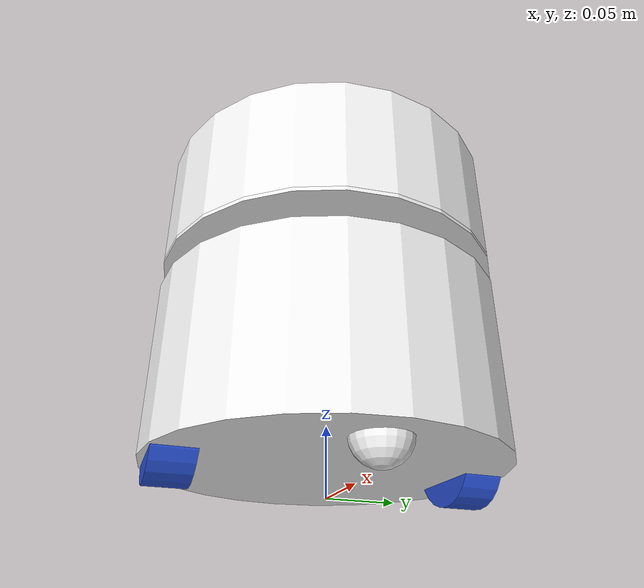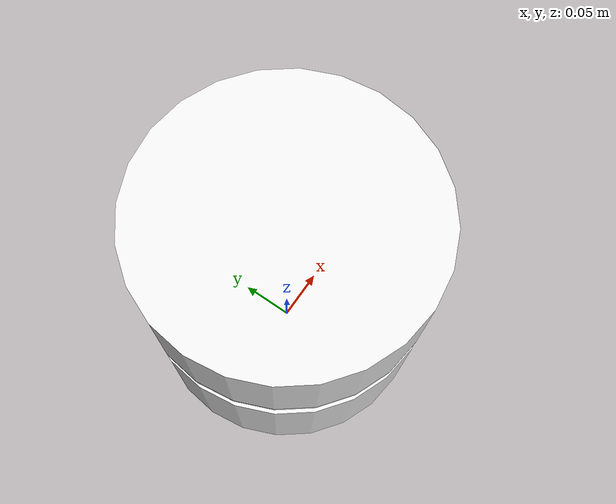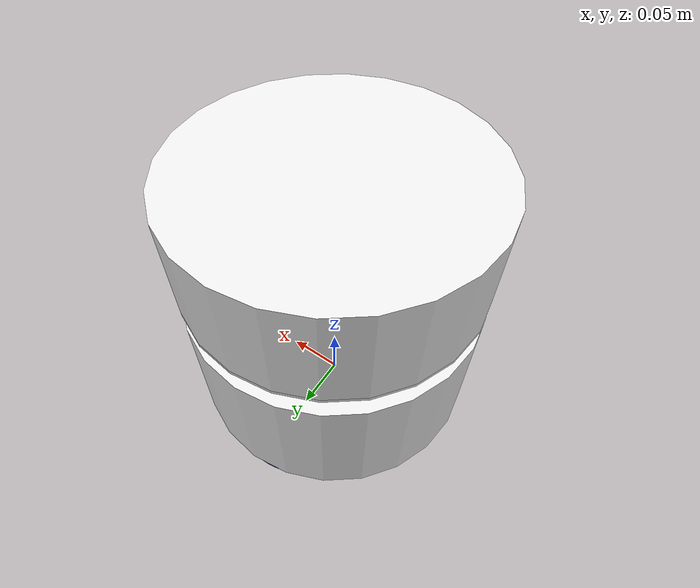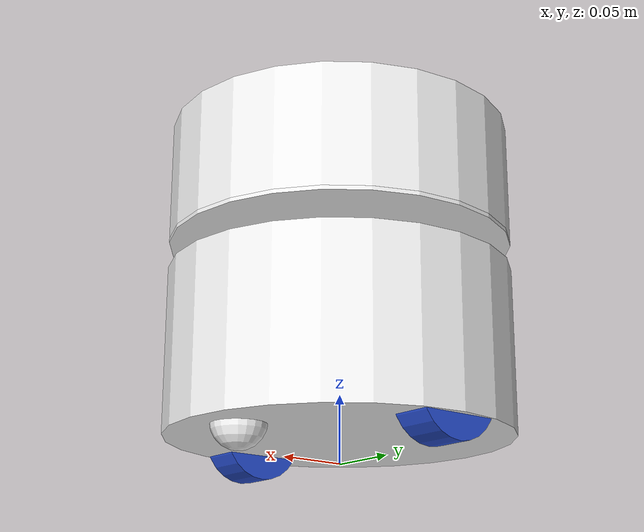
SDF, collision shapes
<sdf version='1.7'>
  <model name='makerspet_fido'>
    <link name='base_footprint'>
      <inertial>
        <pose>0.016697 0 0.092856 0 -0 0</pose>
        <mass>1.32</mass>
        <inertia>
          <ixx>0.0106776</ixx>
          <ixy>-1.23224e-19</ixy>
          <ixz>2.64265e-06</ixz>
          <iyy>0.013295</iyy>
          <iyz>-5.61402e-19</iyz>
          <izz>0.00547599</izz>
        </inertia>
      </inertial>
      <collision name='base_footprint_fixed_joint_lump__base_link_collision'>
        <pose>0 0 0.07935 0 -0 0</pose>
        <geometry>
          <cylinder>
            <length>0.1227</length>
            <radius>0.1271</radius>
          </cylinder>
        </geometry>
        <surface>
          <contact>
            <ode/>
          </contact>
          <friction>
            <ode/>
          </friction>
        </surface>
      </collision>
      <collision name='base_footprint_fixed_joint_lump__base_upper_link_collision_1'>
        <pose>0 0 0.1617 0 -0 0</pose>
        <geometry>
          <cylinder>
            <length>0.003</length>
            <radius>0.1271</radius>
          </cylinder>
        </geometry>
        <surface>
          <contact>
            <ode/>
          </contact>
          <friction>
            <ode/>
          </friction>
        </surface>
      </collision>
      <collision name='base_footprint_fixed_joint_lump__head_link_collision_2'>
        <pose>0 0 0.2082 0 -0 0</pose>
        <geometry>
          <cylinder>
            <length>0.09</length>
            <radius>0.1271</radius>
          </cylinder>
        </geometry>
        <surface>
          <contact>
            <ode/>
          </contact>
          <friction>
            <ode/>
          </friction>
        </surface>
      </collision>
      <collision name='base_footprint_fixed_joint_lump__tablet_link_collision_3'>
        <pose>0.043744 0 0.199895 1.22173 -0 1.5708</pose>
        <geometry>
          <box>
            <size>0.1669 0.0781 0.009</size>
          </box>
        </geometry>
      </collision>
      <collision name='base_footprint_fixed_joint_lump__caster_link_collision_4'>
        <pose>0.0885 0 0.02 0 -0 0</pose>
        <geometry>
          <sphere>
            <radius>0.02</radius>
          </sphere>
        </geometry>
        <surface>
          <contact>
            <ode/>
          </contact>
          <friction>
            <ode>
              <mu>0.2</mu>
              <mu2>0.2</mu2>
            </ode>
          </friction>
        </surface>
      </collision>
      <collision name='base_footprint_fixed_joint_lump__base_scan_collision_5'>
        <pose>0 0 0.14935 -3.14159 0 0</pose>
        <geometry>
          <cylinder>
            <length>0.0173</length>
            <radius>0.0328</radius>
          </cylinder>
        </geometry>
        <surface>
          <contact>
            <ode/>
          </contact>
          <friction>
            <ode/>
          </friction>
        </surface>
      </collision>
      <visual name='base_footprint_fixed_joint_lump__base_link_visual'>
        <pose>0 0 0.07935 0 -0 0</pose>
        <geometry>
          <cylinder>
            <length>0.1227</length>
            <radius>0.1271</radius>
          </cylinder>
        </geometry>
        <material>
          <script>
            <name>Gazebo/White</name>
            <uri>file://media/materials/scripts/gazebo.material</uri>
          </script>
        </material>
      </visual>
      <visual name='base_footprint_fixed_joint_lump__base_upper_link_visual_1'>
        <pose>0 0 0.1617 0 -0 0</pose>
        <geometry>
          <cylinder>
            <length>0.003</length>
            <radius>0.1271</radius>
          </cylinder>
        </geometry>
        <material>
          <script>
            <name>Gazebo/White</name>
            <uri>file://media/materials/scripts/gazebo.material</uri>
          </script>
        </material>
      </visual>
      <visual name='base_footprint_fixed_joint_lump__head_link_visual_2'>
        <pose>0 0 0.1632 0 -0 0</pose>
        <geometry>
          <mesh>
            <scale>0.000254 0.000254 0.00018</scale>
            <uri>model://makerspet_fido/mesh/head.stl</uri>
          </mesh>
        </geometry>
        <material>
          <script>
            <name>Gazebo/Red</name>
            <uri>file://media/materials/scripts/gazebo.material</uri>
          </script>
        </material>
      </visual>
      <visual name='base_footprint_fixed_joint_lump__tablet_link_visual_3'>
        <pose>0.043744 0 0.199895 1.22173 -0 1.5708</pose>
        <geometry>
          <box>
            <size>0.1669 0.0781 0.009</size>
          </box>
        </geometry>
      </visual>
      <visual name='base_footprint_fixed_joint_lump__color_camera_link_visual_4'>
        <pose>0.047879 -0.07545 0.2014 0 1.22173 0</pose>
        <geometry>
          <cylinder>
            <length>0.0001</length>
            <radius>0.002</radius>
          </cylinder>
        </geometry>
      </visual>
      <visual name='base_footprint_fixed_joint_lump__imu_link_visual_5'>
        <pose>0.043744 0 0.199895 0 -0.349066 0</pose>
        <geometry>
          <box>
            <size>0.001 0.002 0.004</size>
          </box>
        </geometry>
      </visual>
      <visual name='base_footprint_fixed_joint_lump__caster_link_visual_6'>
        <pose>0.0885 0 0.02 0 -0 0</pose>
        <geometry>
          <sphere>
            <radius>0.02</radius>
          </sphere>
        </geometry>
        <material>
          <script>
            <name>Gazebo/Yellow</name>
            <uri>file://media/materials/scripts/gazebo.material</uri>
          </script>
        </material>
      </visual>
      <visual name='base_footprint_fixed_joint_lump__base_scan_visual_7'>
        <pose>0 0 0.14935 -3.14159 0 0</pose>
        <geometry>
          <cylinder>
            <length>0.0173</length>
            <radius>0.0328</radius>
          </cylinder>
        </geometry>
      </visual>
      <sensor name='color_camera' type='camera'>
        <always_on>1</always_on>
        <visualize>0</visualize>
        <update_rate>15</update_rate>
        <camera name='front_color_camera'>
          <horizontal_fov>1.39626</horizontal_fov>
          <image>
            <width>720</width>
            <height>480</height>
            <format>R8G8B8</format>
          </image>
          <clip>
            <near>0.02</near>
            <far>300</far>
          </clip>
          <noise>
            <type>gaussian</type>
            <mean>0</mean>
            <stddev>0.007</stddev>
          </noise>
        </camera>
        <plugin name='color_camera_plugin' filename='libgazebo_ros_camera.so'/>
        <pose>0.047879 -0.07545 0.2014 0 -0.349066 0</pose>
      </sensor>
      <gravity>1</gravity>
      <sensor name='imu_sensor' type='imu'>
        <always_on>1</always_on>
        <update_rate>100</update_rate>
        <imu>
          <angular_velocity>
            <x>
              <noise type='gaussian'>
                <mean>0</mean>
                <stddev>0.0002</stddev>
              </noise>
            </x>
            <y>
              <noise type='gaussian'>
                <mean>0</mean>
                <stddev>0.0002</stddev>
              </noise>
            </y>
            <z>
              <noise type='gaussian'>
                <mean>0</mean>
                <stddev>0.0002</stddev>
              </noise>
            </z>
          </angular_velocity>
          <linear_acceleration>
            <x>
              <noise type='gaussian'>
                <mean>0</mean>
                <stddev>0.017</stddev>
              </noise>
            </x>
            <y>
              <noise type='gaussian'>
                <mean>0</mean>
                <stddev>0.017</stddev>
              </noise>
            </y>
            <z>
              <noise type='gaussian'>
                <mean>0</mean>
                <stddev>0.017</stddev>
              </noise>
            </z>
          </linear_acceleration>
        </imu>
        <plugin name='imu_plugin' filename='libgazebo_ros_imu_sensor.so'>
          <ros>
            <remapping>~/out:=imu</remapping>
          </ros>
        </plugin>
        <pose>0.043744 0 0.199895 0 -0.349066 0</pose>
      </sensor>
      <sensor name='laser_scan_sensor' type='ray'>
        <visualize>0</visualize>
        <always_on>1</always_on>
        <update_rate>9</update_rate>
        <ray>
          <scan>
            <horizontal>
              <samples>360</samples>
              <resolution>1</resolution>
              <min_angle>0</min_angle>
              <max_angle>6.28319</max_angle>
            </horizontal>
          </scan>
          <range>
            <min>0.1</min>
            <max>12</max>
            <resolution>0.02</resolution>
          </range>
          <noise>
            <type>gaussian</type>
            <mean>0</mean>
            <stddev>0.01</stddev>
          </noise>
        </ray>
        <plugin name='laser_scan_plugin' filename='libgazebo_ros_ray_sensor.so'>
          <ros>
            <remapping>~/out:=scan</remapping>
          </ros>
          <output_type>sensor_msgs/LaserScan</output_type>
          <frame_name>base_scan</frame_name>
        </plugin>
        <pose>0 0 0.14935 -3.14159 0 0</pose>
      </sensor>
    </link>
    <joint name='wheel_left_joint' type='revolute'>
      <pose relative_to='base_footprint'>0 0.107161 0.0335 -1.5708 0 0</pose>
      <parent>base_footprint</parent>
      <child>wheel_left_link</child>
      <axis>
        <xyz>0 0 1</xyz>
        <limit>
          <lower>-1e+16</lower>
          <upper>1e+16</upper>
        </limit>
        <dynamics>
          <spring_reference>0</spring_reference>
          <spring_stiffness>0</spring_stiffness>
        </dynamics>
      </axis>
    </joint>
    <link name='wheel_left_link'>
      <pose relative_to='wheel_left_joint'>0 0 0 0 -0 0</pose>
      <inertial>
        <pose>0 0 0 1.5708 -0 0</pose>
        <mass>0.05</mass>
        <inertia>
          <ixx>1.75323e-05</ixx>
          <ixy>0</ixy>
          <ixz>0</ixz>
          <iyy>1.75323e-05</iyy>
          <iyz>0</iyz>
          <izz>2.80563e-05</izz>
        </inertia>
      </inertial>
      <collision name='wheel_left_link_collision'>
        <pose>0 0 0 0 -0 0</pose>
        <geometry>
          <cylinder>
            <length>0.029</length>
            <radius>0.0335</radius>
          </cylinder>
        </geometry>
        <surface>
          <contact>
            <ode/>
          </contact>
          <friction>
            <ode>
              <mu>0.2</mu>
              <mu2>0.2</mu2>
            </ode>
          </friction>
        </surface>
      </collision>
      <visual name='wheel_left_link_visual'>
        <pose>0 0 0 0 -0 0</pose>
        <geometry>
          <cylinder>
            <length>0.029</length>
            <radius>0.0335</radius>
          </cylinder>
        </geometry>
        <material>
          <script>
            <name>Gazebo/Blue</name>
            <uri>file://media/materials/scripts/gazebo.material</uri>
          </script>
        </material>
      </visual>
    </link>
    <joint name='wheel_right_joint' type='revolute'>
      <pose relative_to='base_footprint'>0 -0.107161 0.0335 -1.5708 0 0</pose>
      <parent>base_footprint</parent>
      <child>wheel_right_link</child>
      <axis>
        <xyz>0 0 1</xyz>
        <limit>
          <lower>-1e+16</lower>
          <upper>1e+16</upper>
        </limit>
        <dynamics>
          <spring_reference>0</spring_reference>
          <spring_stiffness>0</spring_stiffness>
        </dynamics>
      </axis>
    </joint>
    <link name='wheel_right_link'>
      <pose relative_to='wheel_right_joint'>0 0 0 0 -0 0</pose>
      <inertial>
        <pose>0 0 0 1.5708 -0 0</pose>
        <mass>0.05</mass>
        <inertia>
          <ixx>1.75323e-05</ixx>
          <ixy>0</ixy>
          <ixz>0</ixz>
          <iyy>1.75323e-05</iyy>
          <iyz>0</iyz>
          <izz>2.80563e-05</izz>
        </inertia>
      </inertial>
      <collision name='wheel_right_link_collision'>
        <pose>0 0 0 0 -0 0</pose>
        <geometry>
          <cylinder>
            <length>0.029</length>
            <radius>0.0335</radius>
          </cylinder>
        </geometry>
        <surface>
          <contact>
            <ode/>
          </contact>
          <friction>
            <ode>
              <mu>0.2</mu>
              <mu2>0.2</mu2>
            </ode>
          </friction>
        </surface>
      </collision>
      <visual name='wheel_right_link_visual'>
        <pose>0 0 0 0 -0 0</pose>
        <geometry>
          <cylinder>
            <length>0.029</length>
            <radius>0.0335</radius>
          </cylinder>
        </geometry>
        <material>
          <script>
            <name>Gazebo/Blue</name>
            <uri>file://media/materials/scripts/gazebo.material</uri>
          </script>
        </material>
      </visual>
    </link>
    <plugin name='differential_drive_plugin' filename='libgazebo_ros_diff_drive.so'>
      <update_rate>30</update_rate>
      <left_joint>wheel_left_joint</left_joint>
      <right_joint>wheel_right_joint</right_joint>
      <wheel_separation>0.214322</wheel_separation>
      <wheel_diameter>0.067</wheel_diameter>
      <max_wheel_torque>0.49</max_wheel_torque>
      <max_wheel_acceleration>5</max_wheel_acceleration>
      <command_topic>cmd_vel</command_topic>
      <publish_odom>1</publish_odom>
      <publish_odom_tf>1</publish_odom_tf>
      <publish_wheel_tf>0</publish_wheel_tf>
      <odometry_topic>odom</odometry_topic>
      <odometry_frame>odom</odometry_frame>
      <robot_base_frame>base_footprint</robot_base_frame>
    </plugin>
    <static>0</static>
    <plugin name='joint_state_plugin' filename='libgazebo_ros_joint_state_publisher.so'>
      <ros>
        <remapping>~/out:=joint_states</remapping>
      </ros>
      <update_rate>30</update_rate>
      <joint_name>wheel_left_joint</joint_name>
      <joint_name>wheel_right_joint</joint_name>
    </plugin>
  </model>
</sdf>
